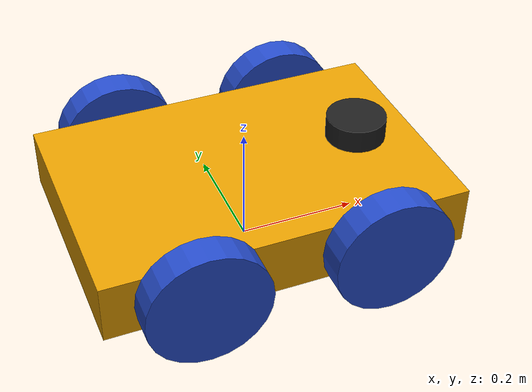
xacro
<?xml version="1.0"?>
<robot xmlns:xacro="http://www.ros.org/wiki/xacro" name="robot_simulation">

  <!-- begin macros definition -->
  <xacro:macro name="base_geometry">
    <origin xyz="0.0 0.0 0.1" rpy="0.0 0.0 0.0"/>
      <geometry>
        <box size="0.6 0.4 0.1"/>
      </geometry>
  </xacro:macro>

  <xacro:macro name="wheel_description" params="name">
    <link name="${name}">
    <inertial>
        <mass value="5.0"/>
        <inertia ixx="1.0" ixy="0.0" ixz="0.0" iyy="1.0" iyz="0.0" izz="1.0"/>
    </inertial>
    <visual>
        <origin xyz="0.0 0.0 0.0" rpy="1.57075 0 0"/>
        <geometry>
            <cylinder radius="0.1" length="0.05"/>
        </geometry>
    </visual>
    <collision>
        <origin xyz="0.0 0.0 0.0" rpy="1.57075 0 0"/>
        <geometry>
            <cylinder radius="0.1" length="0.05"/>
        </geometry>
    </collision>
  </link>
  </xacro:macro>

  <xacro:macro name="joint_desc" params="side side2 x y">
    <joint name="${side}_${side2}_joint" type="continuous">
      <origin xyz="${x} ${y} 0.1" rpy="0.0 0.0 0.0"/>
      <parent link="base_link"/>
      <child link="${side}_${side2}_wheel"/>
      <axis xyz="0.0 1 0.0"/>
    </joint>
  </xacro:macro>

  <xacro:macro name="transmission_desc" params="side side2">
    <transmission name="${side}_${side2}_wheel_trans">
      <type>transmission_interface/SimpleTransmission</type>
      <joint name="${side}_${side2}_joint">
        <hardwareInterface>VelocityJointInterface</hardwareInterface>
      </joint>
      <actuator name="${side}_${side2}_motor">
        <mechanicalReduction>1.0</mechanicalReduction>
      </actuator>
    </transmission>
  </xacro:macro>

  <xacro:macro name="gazebo_wheel" params="ref">
    <gazebo reference="${ref}">
      <mu1 value="200.0"/>
      <mu2 value="100.0"/>
      <kp value="10000000.0" />
      <kd value="1.0" />
      <material>Gazebo/Blue</material>
    </gazebo>
  </xacro:macro>
  <!-- end macros definition -->

  <link name="base_link">
    <inertial>
      <mass value="10"/>
      <inertia ixx="1.0" ixy="0.0" ixz="0.0" iyy="1.0" iyz="0.0" izz="1.0"/>
    </inertial>

    <visual name="base_visual">
      <xacro:base_geometry />
    </visual>
    <collision name="base_collision">
      <xacro:base_geometry />
    </collision>
  </link>

  <link name="front_mark">
    <inertial>
      <mass value="1"/>
      <inertia ixx="1.0" ixy="0.0" ixz="0.0" iyy="1.0" iyz="0.0" izz="1.0"/>
    </inertial>
    <visual>
        <origin xyz="0.0 0.0 0.0" rpy="0 0 0"/>
        <geometry>
            <cylinder radius="0.05" length="0.08"/>
        </geometry>
    </visual>
    <collision>
        <origin xyz="0.0 0.0 0.0" rpy="0 0 0"/>
        <geometry>
            <cylinder radius="0.05" length="0.08"/>
        </geometry>
    </collision>
  </link>

  <joint name="front_mark_joint" type="fixed">
    <origin xyz="0.2 0.0 0.15" rpy="0.0 0.0 0.0"/>
    <parent link="base_link"/>
    <child link="front_mark"/>
  </joint>

  <gazebo reference="front_mark">
      <material>Gazebo/Black</material>
    </gazebo>

  <xacro:wheel_description name="right_front_wheel" />
  <xacro:wheel_description name="right_back_wheel" />
  <xacro:wheel_description name="left_front_wheel" />
  <xacro:wheel_description name="left_back_wheel" />

  <xacro:joint_desc side="right" side2="front" x="0.15" y="-0.226" />
  <xacro:joint_desc side="right" side2="back" x="-0.15" y="-0.226" />
  <xacro:joint_desc side="left" side2="front" x="0.15" y="0.226" />
  <xacro:joint_desc side="left" side2="back" x="-0.15" y="0.226" />

  <xacro:transmission_desc side="right" side2="front" />
  <xacro:transmission_desc side="right" side2="back" />
  <xacro:transmission_desc side="left" side2="front" />
  <xacro:transmission_desc side="left" side2="back" />

  <xacro:gazebo_wheel ref="right_front_wheel" />
  <xacro:gazebo_wheel ref="right_back_wheel" />
  <xacro:gazebo_wheel ref="left_front_wheel" />
  <xacro:gazebo_wheel ref="left_back_wheel" />

  <!--IMU : link, joint, sensor  -->
<link name="imu_link">
  <inertial>
    <mass value="0.001"/>
    <origin rpy="0 0 0" xyz="0 0 0"/>
    <inertia ixx="0.0001" ixy="0" ixz="0" iyy="0.000001" iyz="0" izz="0.0001"/>
  </inertial>
  <visual>
    <origin rpy="0 0 0" xyz="0 0 0"/>
    <geometry>
      <box size="0.01 0.01 0.01"/>
    </geometry>
  </visual>
  <collision>
    <origin rpy="0 0 0" xyz="0 0 0"/>
    <geometry>
      <box size="0.01 0.01 0.01"/>
    </geometry>
  </collision>
</link>

<joint name="imu_joint" type="fixed">
  <axis xyz="1 0 0"/>
  <origin xyz="0 0 0.105"/>
  <parent link="base_link"/>
  <child link="imu_link"/>
</joint>

<gazebo>
    <plugin name="imu_plugin" filename="libgazebo_ros_imu.so">
      <alwaysOn>true</alwaysOn>
      <bodyName>imu_link</bodyName>
      <topicName>imu</topicName>
      <serviceName>imu_service</serviceName>
      <gaussianNoise>0.0</gaussianNoise>
      <updateRate>20.0</updateRate>
    </plugin>
  </gazebo>

  <!-- Gazebo plugin for ROS Control -->
  <gazebo>
    <plugin name="gazebo_ros_control" filename="libgazebo_ros_control.so">
      <robotNamespace>/</robotNamespace>
    </plugin>
  </gazebo>

</robot>
